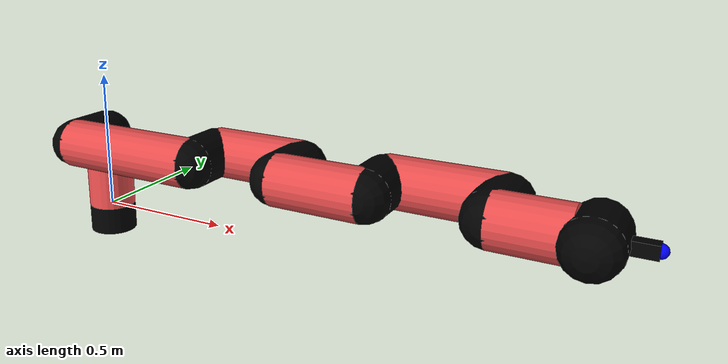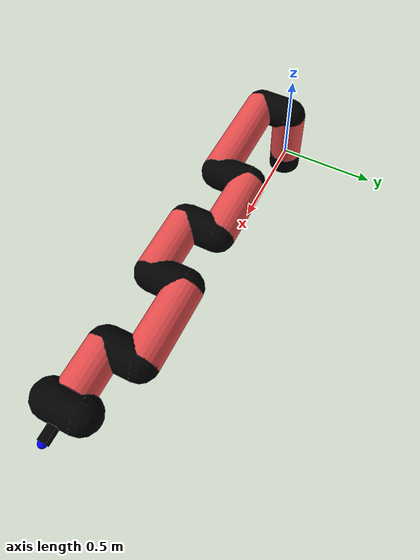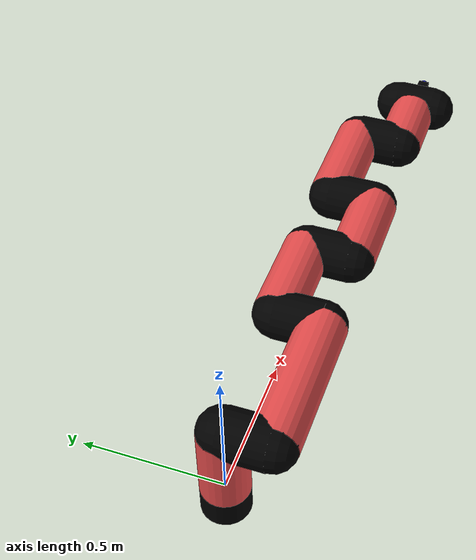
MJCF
<mujoco model="manipulator">
		<compiler angle="degree" coordinate="local" inertiafromgeom="auto" meshdir="meshes/"/>
		<option gravity="0 0 0" integrator="RK4" iterations="30" timestep="0.01"/>

		<default>
		<joint armature="1" limited="true" stiffness="10" damping="15" frictionloss="5.0"/>
		<geom conaffinity="1" condim="3" contype="1" friction=".5 .1 .1" margin="0.002"/>
		<motor ctrllimited="true"/>
		<position ctrllimited="true"/>
		</default>

		<asset>
		<texture builtin="gradient" height="100" rgb1="1.0 1.0 1.0" rgb2="1.0 1.0 1.0" type="skybox" width="100"/>
		<texture builtin="flat" height="32" name="arm_tex" rgb1="0.9 0.3 0.3" type="2d" width="32"/>
		<texture builtin="flat" height="32" name="gripper_tex" rgb1="0.0 0.0 0.0" type="cube" width="32"/>

		<material name="arm_mat" shininess="0.1" specular="0.1" texture="arm_tex"/>
		<material name="gripper_mat" shininess="1" specular="1" texture="gripper_tex"/>
		</asset>

		<worldbody>
		<light cutoff="45" diffuse=".8 .8 .8" dir="0 0.16 -1" directional="false" name="light" pos="0 -2.0 8.0" specular="0.3 0.3 0.3"/>

		<body name="base_link" pos="0 0 -0.1">
		<geom fromto="0 0 0 0 0 0.1" material="arm_mat" name="base_link" rgba="0.0 0.0 0.0 1" size="0.085" type="cylinder"/>
		</body>

		<body name="l1" pos="0 0 0">
<geom fromto="0 0 0 0 0 0.28" material="arm_mat" name="l1" rgba="0.9 0.3 0.3 1" size="0.085" type="cylinder"/>
<geom fromto="0 0 0.28 0 -0.16 0.28" material="arm_mat" name="l1_ex" rgba="0.0 0.0 0.0 1" size="0.085" type="capsule"/>
<joint axis="0 0 1" name="j1" pos="0 0 0" range="-90 90" damping="32.02" frictionloss="8.4"/>

<body name="l2" pos="0 -0.16 0.28">
<geom fromto="0 0 0 0.51 0 0" material="arm_mat" name="l2" rgba="0.9 0.3 0.3 1" size="0.085" type="cylinder"/>
<geom fromto="0.51 0 0 0.51 0.16 0" material="arm_mat" name="l2_ex" rgba="0.0 0.0 0.0 1" size="0.085" type="capsule"/>
<joint axis="0.0 1.0 0.0" name="j2" pos="0 0 0" range="-90 60" damping="30.02" frictionloss="10.89"/>

<body name="l3" pos="0.51 0.16 0">
<geom fromto="0 0 0 0.33 0 0" material="arm_mat" name="l3" rgba="0.9 0.3 0.3 1" size="0.085" type="cylinder"/>
<geom fromto="0.33 0 0 0.33 -0.16 0" material="arm_mat" name="l3_ex" rgba="0.0 0.0 0.0 1" size="0.085" type="capsule"/>
<joint axis="0.0 1.0 0.0" name="j3" pos="0 0 0" range="-30 60" damping="34.17" frictionloss="8.43"/>

<body name="l4" pos="0.33 -0.16 0">
<geom fromto="0 0 0 0.3 0 0" material="arm_mat" name="l4" rgba="0.9 0.3 0.3 1" size="0.085" type="cylinder"/>
<geom fromto="0.3 0 0 0.3 0.16 0" material="arm_mat" name="l4_ex" rgba="0.0 0.0 0.0 1" size="0.085" type="capsule"/>
<joint axis="0.0 1.0 0.0" name="j4" pos="0 0 0" range="-30 60" damping="25.05" frictionloss="9.47"/>

<body name="l5" pos="0.3 0.16 0">
<geom fromto="0 0 0 0.37 0 0" material="arm_mat" name="l5" rgba="0.9 0.3 0.3 1" size="0.085" type="cylinder"/>
<geom fromto="0.37 0 0 0.37 -0.16 0" material="arm_mat" name="l5_ex" rgba="0.0 0.0 0.0 1" size="0.085" type="capsule"/>
<joint axis="0.0 1.0 0.0" name="j5" pos="0 0 0" range="-30 60" damping="37.52" frictionloss="8.65"/>

<body name="l6" pos="0.37 -0.16 0">
<geom fromto="0 0 0 0.22 0 0" material="arm_mat" name="l6" rgba="0.9 0.3 0.3 1" size="0.085" type="cylinder"/>
<joint axis="0.0 1.0 0.0" name="j6" pos="0 0 0" range="-30 60" damping="22.29" frictionloss="10.07"/>

<body name="gripper" pos="0.22 0 0">
<geom fromto="0.05 -0.07 0 0.05 0.07 0" material="gripper_mat" name="gripper" rgba="0.0 0.0 0.0 1" size="0.085" type="capsule"/><joint axis="1 0 0" name="j7" pos="0 0 0" range="-90 90" damping="15" frictionloss="5.0"/><body name="finger" pos="0.1 0 0">
<geom fromto="0 0.0 0 0.1 0.0 0" material="gripper_mat" name="finger" rgba="0.0 0.0 0.0 1" size="0.020 0.06 0.06" type="box"/>
</body>
<site name="current" pos="0.2 0. 0.0" rgba="0. 0. 1.0 1" size="0.02" type="sphere"/>
</body>
</body>
</body>
</body>
</body>
</body>
</body>
</worldbody>
<actuator>
<motor ctrllimited="true" ctrlrange="-1.0 1.0" joint="j1" gear="56.36"/>
<motor ctrllimited="true" ctrlrange="-1.0 1.0" joint="j2" gear="77.04"/>
<motor ctrllimited="true" ctrlrange="-1.0 1.0" joint="j3" gear="79.76"/>
<motor ctrllimited="true" ctrlrange="-1.0 1.0" joint="j4" gear="82.9"/>
<motor ctrllimited="true" ctrlrange="-1.0 1.0" joint="j5" gear="87.03"/>
<motor ctrllimited="true" ctrlrange="-1.0 1.0" joint="j6" gear="98.12"/>
<motor ctrllimited="true" ctrlrange="-1.0 1.0" joint="j7" gear="80"/>
</actuator>
</mujoco>
